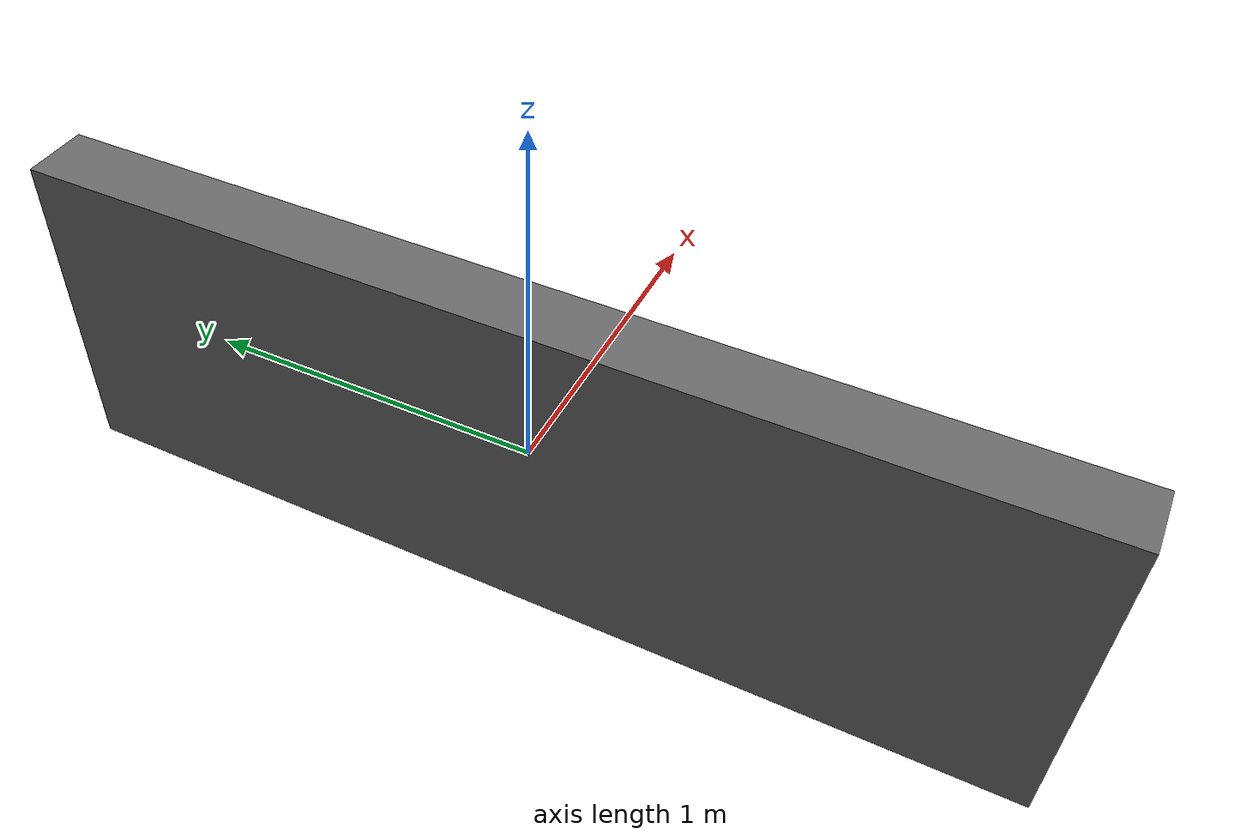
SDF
<?xml version="1.0"?>
<sdf version="1.7">
  <model name="wallObstacle">
    <link name="wall_body">
      <visual name="wall">
        <pose> 0 0 0 0 0 0</pose>
        <geometry>
          <box>
            <size>0.2 3 1</size>
          </box>
        </geometry>
        <material>
          <ambient>0.4 0.4 0.4 1</ambient>
          <diffuse>0.4 0.4 0.4 1</diffuse>
          <specular>0.4 0.4 0.4 1</specular>
          <emissive>0.4 0.4 0.4 1</emissive>
        </material>
      </visual>
      <collision name="wall">
        <pose> 0 0 0 0 0 0</pose>
        <geometry>
          <box>
            <size>0.2 3 1</size>
          </box>
        </geometry>
      </collision>
    </link>
  </model>
</sdf>
